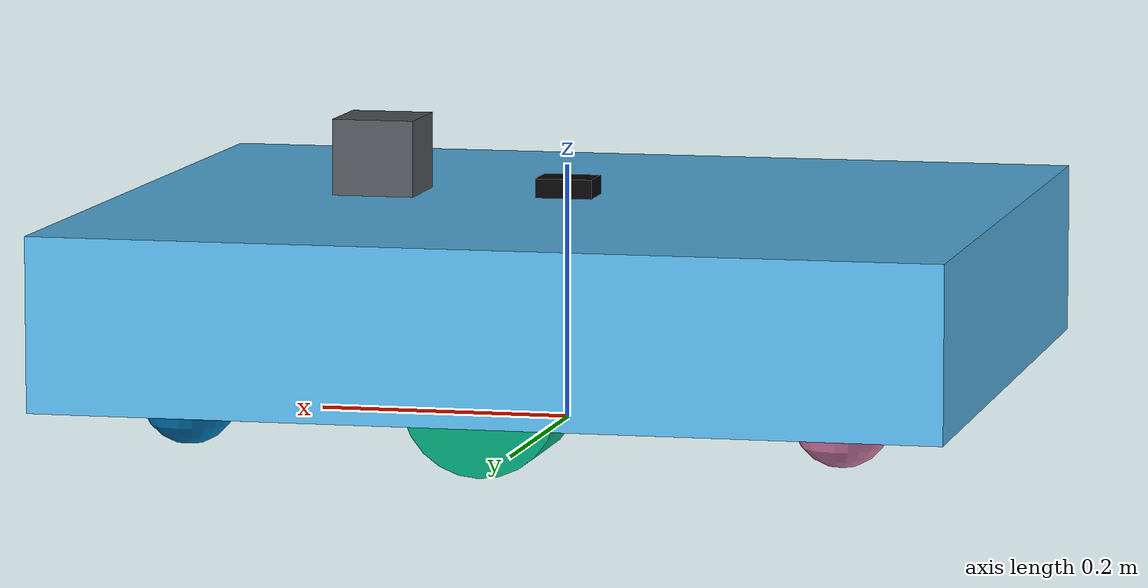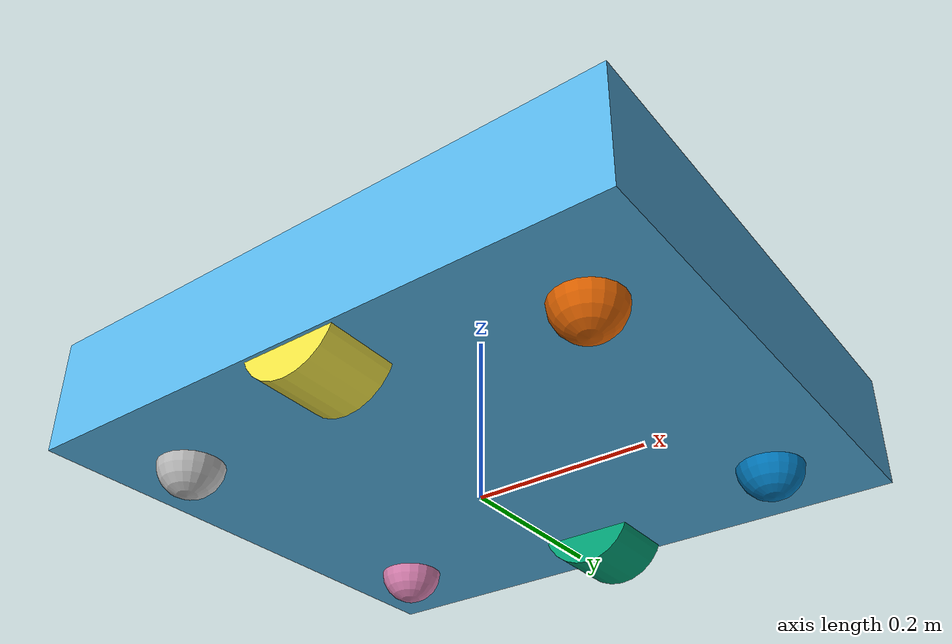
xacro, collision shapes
<?xml version="1.0"?>
<robot xmlns:xacro="http://www.ros.org/wiki/xacro" name="tracer_2_0">

  <!-- TRACER 2.0 main dimensions (metres), based on the 2025 user manual. -->
  <xacro:property name="body_length" value="0.702"/>
  <xacro:property name="body_width" value="0.610"/>
  <xacro:property name="body_height" value="0.135"/>
  <xacro:property name="body_z" value="0.105"/>
  <xacro:property name="wheel_separation" value="0.5174"/>
  <xacro:property name="wheel_radius" value="0.0605"/>
  <xacro:property name="wheel_width" value="0.0844"/>
  <!-- xacro already provides the global mathematical constant "pi". -->

  <material name="tracer_blue">
    <color rgba="0.055 0.22 0.42 1.0"/>
  </material>
  <material name="tracer_dark">
    <color rgba="0.035 0.045 0.055 1.0"/>
  </material>
  <material name="tracer_grey">
    <color rgba="0.28 0.31 0.34 1.0"/>
  </material>
  <material name="sensor_black">
    <color rgba="0.02 0.02 0.025 1.0"/>
  </material>
  <material name="lamp_white">
    <color rgba="0.85 0.92 1.0 1.0"/>
  </material>

  <xacro:macro name="box_inertia" params="mass x y z">
    <inertial>
      <mass value="${mass}"/>
      <inertia
        ixx="${mass * (y*y + z*z) / 12.0}" ixy="0" ixz="0"
        iyy="${mass * (x*x + z*z) / 12.0}" iyz="0"
        izz="${mass * (x*x + y*y) / 12.0}"/>
    </inertial>
  </xacro:macro>

  <xacro:macro name="cylinder_inertia_y" params="mass radius length">
    <inertial>
      <mass value="${mass}"/>
      <inertia
        ixx="${mass * (3*radius*radius + length*length) / 12.0}" ixy="0" ixz="0"
        iyy="${mass * radius*radius / 2.0}" iyz="0"
        izz="${mass * (3*radius*radius + length*length) / 12.0}"/>
    </inertial>
  </xacro:macro>

  <link name="base_footprint"/>

  <link name="base_link">
    <visual name="official_tracer_body">
      <origin xyz="0 0 0.0335" rpy="${pi/2.0} 0 0"/>
      <geometry>
        <mesh filename="package://tracer_gazebo_sim/meshes/tracer_base_link.dae"/>
      </geometry>
    </visual>
    <collision>
      <geometry>
        <box size="${body_length} ${body_width} ${body_height}"/>
      </geometry>
    </collision>
    <xacro:box_inertia mass="43.0" x="${body_length}" y="${body_width}" z="${body_height}"/>
  </link>

  <joint name="base_footprint_joint" type="fixed">
    <parent link="base_footprint"/>
    <child link="base_link"/>
    <origin xyz="0 0 ${body_z}"/>
  </joint>

  <xacro:macro name="drive_wheel" params="side sign">
    <link name="${side}_wheel_link">
      <!-- Wheels are already part of the official complete visual mesh. -->
      <collision>
        <origin rpy="${pi/2.0} 0 0"/>
        <geometry>
          <cylinder radius="${wheel_radius}" length="${wheel_width}"/>
        </geometry>
      </collision>
      <xacro:cylinder_inertia_y mass="3.0" radius="${wheel_radius}" length="${wheel_width}"/>
    </link>
    <joint name="${side}_wheel_joint" type="continuous">
      <parent link="base_link"/>
      <child link="${side}_wheel_link"/>
      <origin xyz="0 ${sign * wheel_separation/2.0} ${wheel_radius - body_z}"/>
      <axis xyz="0 1 0"/>
      <dynamics damping="0.05" friction="0.02"/>
    </joint>
  </xacro:macro>

  <xacro:drive_wheel side="left" sign="1"/>
  <xacro:drive_wheel side="right" sign="-1"/>

  <!-- Low-friction support balls approximate the four passive caster assemblies. -->
  <xacro:macro name="support_caster" params="name x y">
    <link name="${name}_caster_link">
      <!-- Caster appearance is already part of the official complete mesh. -->
      <collision>
        <geometry>
          <sphere radius="0.038"/>
        </geometry>
      </collision>
      <inertial>
        <mass value="0.15"/>
        <inertia ixx="0.000087" ixy="0" ixz="0" iyy="0.000087" iyz="0" izz="0.000087"/>
      </inertial>
    </link>
    <joint name="${name}_caster_joint" type="fixed">
      <parent link="base_link"/>
      <child link="${name}_caster_link"/>
      <origin xyz="${x} ${y} ${0.038 - body_z}"/>
    </joint>
  </xacro:macro>

  <xacro:support_caster name="front_left" x="0.255" y="0.190"/>
  <xacro:support_caster name="front_right" x="0.255" y="-0.190"/>
  <xacro:support_caster name="rear_left" x="-0.255" y="0.190"/>
  <xacro:support_caster name="rear_right" x="-0.255" y="-0.190"/>

  <link name="imu_link">
    <visual>
      <geometry>
        <box size="0.045 0.035 0.015"/>
      </geometry>
      <material name="sensor_black"/>
    </visual>
    <collision>
      <geometry>
        <box size="0.045 0.035 0.015"/>
      </geometry>
    </collision>
    <xacro:box_inertia mass="0.05" x="0.045" y="0.035" z="0.015"/>
  </link>
  <joint name="imu_joint" type="fixed">
    <parent link="base_link"/>
    <child link="imu_link"/>
    <origin xyz="0 0 0.078"/>
  </joint>

<link name="livox_frame">

  <!-- MID-360下部机身 -->
  <visual name="livox_body">
    <origin xyz="0 0 -0.0075" rpy="0 0 0"/>
    <geometry>
      <box size="0.065 0.065 0.045"/>
    </geometry>
    <material name="livox_grey">
      <color rgba="0.32 0.34 0.36 1.0"/>
    </material>
  </visual>

  <!-- MID-360上部扫描窗口 -->
  <visual name="livox_window">
    <origin xyz="0 0 0.0225" rpy="0 0 0"/>
    <geometry>
      <cylinder radius="0.0275" length="0.015"/>
    </geometry>
    <material name="livox_black">
      <color rgba="0.025 0.025 0.030 1.0"/>
    </material>
  </visual>

  <!-- 使用简单碰撞体，避免高精度网格影响仿真性能 -->
  <collision>
    <geometry>
      <box size="0.065 0.065 0.060"/>
    </geometry>
  </collision>

  <inertial>
    <mass value="0.265"/>
    <inertia
      ixx="0.000173"
      ixy="0.0"
      ixz="0.0"
      iyy="0.000173"
      iyz="0.0"
      izz="0.000187"/>
  </inertial>

</link>

<!-- 雷达安装在TRACER车体顶部 -->
<joint name="livox_joint" type="fixed">
  <parent link="base_link"/>
  <child link="livox_frame"/>

  <!--
    x：前后位置
    y：左右位置
    z：相对base_link的安装高度
  -->
  <origin xyz="0.15 0 0.10" rpy="0 0 0"/>
</joint>

  <gazebo reference="left_wheel_link">
    <mu1>1.5</mu1>
    <mu2>1.5</mu2>
  </gazebo>
  <gazebo reference="right_wheel_link">
    <mu1>1.5</mu1>
    <mu2>1.5</mu2>
  </gazebo>
  <gazebo reference="front_left_caster_link"><mu1>0.01</mu1><mu2>0.01</mu2></gazebo>
  <gazebo reference="front_right_caster_link"><mu1>0.01</mu1><mu2>0.01</mu2></gazebo>
  <gazebo reference="rear_left_caster_link"><mu1>0.01</mu1><mu2>0.01</mu2></gazebo>
  <gazebo reference="rear_right_caster_link"><mu1>0.01</mu1><mu2>0.01</mu2></gazebo>

  <gazebo reference="imu_link">
    <sensor name="imu_sensor" type="imu">
      <always_on>true</always_on>
      <update_rate>100</update_rate>
      <topic>/imu</topic>
      <gz_frame_id>imu_link</gz_frame_id>
      <imu>
        <angular_velocity>
          <x><noise type="gaussian"><mean>0</mean><stddev>0.0002</stddev></noise></x>
          <y><noise type="gaussian"><mean>0</mean><stddev>0.0002</stddev></noise></y>
          <z><noise type="gaussian"><mean>0</mean><stddev>0.0002</stddev></noise></z>
        </angular_velocity>
        <linear_acceleration>
          <x><noise type="gaussian"><mean>0</mean><stddev>0.017</stddev></noise></x>
          <y><noise type="gaussian"><mean>0</mean><stddev>0.017</stddev></noise></y>
          <z><noise type="gaussian"><mean>0</mean><stddev>0.017</stddev></noise></z>
        </linear_acceleration>
      </imu>
    </sensor>
  </gazebo>

<!-- Gazebo MID-360传感器                                      -->

<gazebo reference="livox_frame">

  <!-- 三维MID-360点云 -->
  <sensor name="livox_mid360" type="gpu_lidar">

    <always_on>true</always_on>
    <visualize>true</visualize>
    <update_rate>10</update_rate>

    <!-- Gazebo会额外发布 /livox/lidar/points -->
    <topic>/livox/lidar</topic>

    <gz_frame_id>livox_frame</gz_frame_id>

    <ray>

      <scan>

        <!-- 360°水平视场 -->
        <horizontal>
          <samples>500</samples>
          <resolution>1</resolution>
          <min_angle>-${pi}</min_angle>
          <max_angle>${pi}</max_angle>
        </horizontal>

        <!-- MID-360垂直视场：-7°到52° -->
        <vertical>
          <samples>40</samples>
          <resolution>1</resolution>
          <min_angle>-0.122173</min_angle>
          <max_angle>0.907571</max_angle>
        </vertical>

      </scan>

      <range>
        <min>0.10</min>
        <max>70.0</max>
        <resolution>0.02</resolution>
      </range>

      <noise>
        <type>gaussian</type>
        <mean>0.0</mean>
        <stddev>0.02</stddev>
      </noise>

    </ray>

  </sensor>

  <!--
    Nav2和SLAM Toolbox需要sensor_msgs/LaserScan。
    这是从MID-360位置发出的虚拟水平扫描切片。
  -->
  <sensor name="livox_nav_slice" type="gpu_lidar">

    <always_on>true</always_on>
    <visualize>false</visualize>
    <update_rate>10</update_rate>

    <topic>/scan</topic>
    <gz_frame_id>livox_frame</gz_frame_id>

    <ray>

      <scan>
        <horizontal>
          <samples>720</samples>
          <resolution>1</resolution>
          <min_angle>-${pi}</min_angle>
          <max_angle>${pi}</max_angle>
        </horizontal>
      </scan>

      <range>
        <min>0.50</min>
        <max>40.0</max>
        <resolution>0.01</resolution>
      </range>

      <noise>
        <type>gaussian</type>
        <mean>0.0</mean>
        <stddev>0.01</stddev>
      </noise>

    </ray>

  </sensor>

</gazebo>

<gazebo>
  <plugin
    filename="gz-sim-diff-drive-system"
    name="gz::sim::systems::DiffDrive">

    <left_joint>left_wheel_joint</left_joint>
    <right_joint>right_wheel_joint</right_joint>

    <wheel_separation>${wheel_separation}</wheel_separation>
    <wheel_radius>${wheel_radius}</wheel_radius>

    <topic>/cmd_vel</topic>
    <odom_topic>/wheel/odom</odom_topic>
    <tf_topic>/wheel/tf</tf_topic>

    <frame_id>odom</frame_id>
    <child_frame_id>base_footprint</child_frame_id>

    <odom_publish_frequency>50</odom_publish_frequency>

    <max_linear_velocity>1.5</max_linear_velocity>
    <max_angular_velocity>1.5</max_angular_velocity>
  </plugin>

  <plugin filename="gz-sim-joint-state-publisher-system" name="gz::sim::systems::JointStatePublisher">
    <topic>/joint_states</topic>
    <joint_name>left_wheel_joint</joint_name>
    <joint_name>right_wheel_joint</joint_name>
  </plugin>
</gazebo>

</robot>
